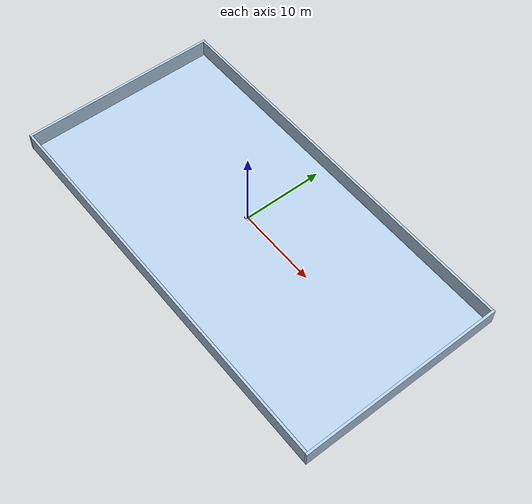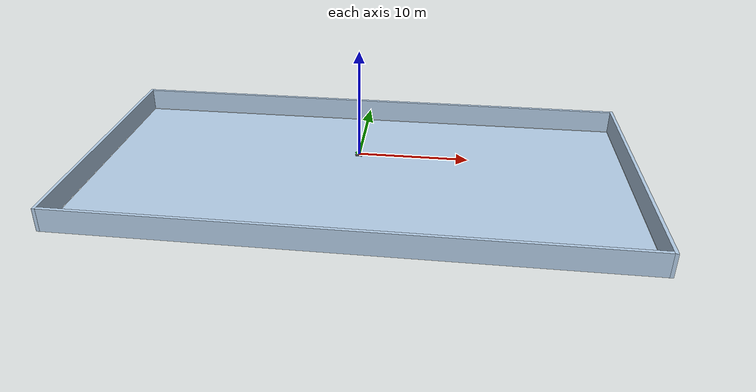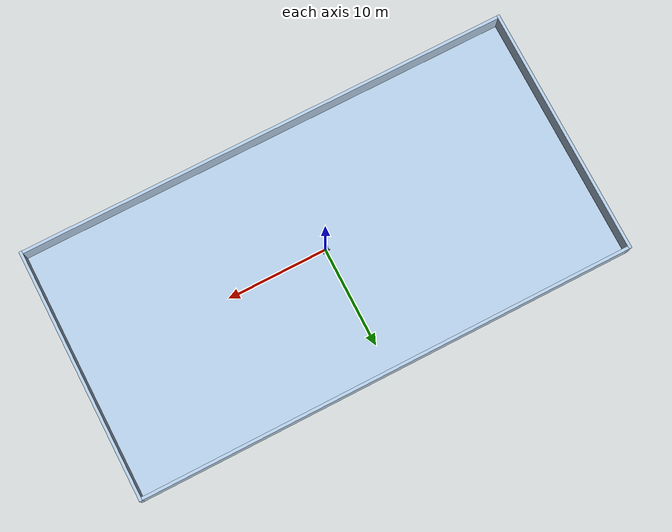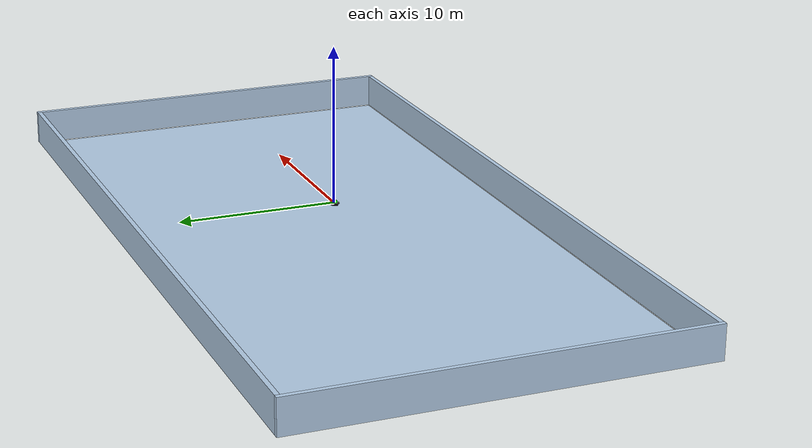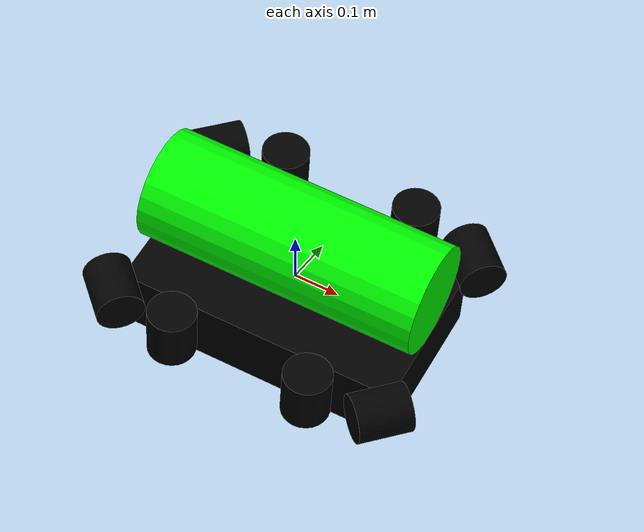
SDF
<?xml version="1.0" ?>
<sdf version="1.8">
    <world name="water_world">
        <physics name="1ms" type="ignored">
            <max_step_size>0.001</max_step_size>
            <real_time_factor>1.0</real_time_factor>
        </physics>

        <plugin
            filename="libignition-gazebo-physics-system.so"
            name="ignition::gazebo::systems::Physics">
        </plugin>
        <plugin
            filename="libignition-gazebo-user-commands-system.so"
            name="ignition::gazebo::systems::UserCommands">
        </plugin>
        <plugin
            filename="libignition-gazebo-scene-broadcaster-system.so"
            name="ignition::gazebo::systems::SceneBroadcaster">
        </plugin>

        <plugin
            filename="ignition-gazebo-sensors-system"
            name="gz::sim::systems::Sensors">
            <render_engine>ogre2</render_engine>
        </plugin>

        <plugin
            filename="ignition-gazebo-buoyancy-system"
            name="ignition::gazebo::systems::Buoyancy">
            <graded_buoyancy>
                <default_density>1000</default_density>
                <density_change>
                    <above_depth>0</above_depth>
                    <density>1</density>
                </density_change>
            </graded_buoyancy>
        </plugin>

        <light type="directional" name="sun">
            <cast_shadows>true</cast_shadows>
            <pose>0 0 10 0 0 0</pose>
            <diffuse>0.8 0.8 0.8 1</diffuse>
            <specular>0.2 0.2 0.2 1</specular>
            <attenuation>
                <range>1000</range>
                <constant>0.9</constant>
                <linear>0.01</linear>
                <quadratic>0.001</quadratic>
            </attenuation>
            <direction>-0.5 0.1 -0.9</direction>
        </light>

        <model name="pool_structure">
            <static>true</static>
            <pose>0 0 -2.2 0 0 0</pose>

            <include>
                <uri>model://pool_ground</uri>
                <pose>0 0 0 0 0 0</pose>
            </include>

            <!-- Long walls (x direction) -->
            <link name="wall_x_pos">
                <pose>25.15 0 1.1 0 0 0</pose>
                <collision name="col">
                <geometry>
                    <box>
                    <size>0.3 25.6 2.2</size>
                    </box>
                </geometry>
                </collision>
                <visual name="vis">
                <geometry>
                    <box>
                    <size>0.3 25.6 2.2</size>
                    </box>
                </geometry>
                <material>
                    <ambient>0.7 0.8 0.9 1</ambient>
                    <diffuse>0.7 0.8 0.9 1</diffuse>
                    <specular>0.3 0.3 0.3 1</specular>
                    <emissive>0 0 0 1</emissive>
                </material>
                </visual>
            </link>

            <link name="wall_x_neg">
                <pose>-25.15 0 1.1 0 0 0</pose>
                <collision name="col">
                <geometry>
                    <box>
                    <size>0.3 25.6 2.2</size>
                    </box>
                </geometry>
                </collision>
                <visual name="vis">
                <geometry>
                    <box>
                    <size>0.3 25.6 2.2</size>
                    </box>
                </geometry>
                <material>
                    <ambient>0.7 0.8 0.9 1</ambient>
                    <diffuse>0.7 0.8 0.9 1</diffuse>
                    <specular>0.3 0.3 0.3 1</specular>
                    <emissive>0 0 0 1</emissive>
                </material>
                </visual>
            </link>

            <!-- Short walls (y direction) -->
            <link name="wall_y_pos">
                <pose>0 12.65 1.1 0 0 0</pose>
                <collision name="col">
                <geometry>
                    <box>
                    <size>50 0.3 2.2</size>
                    </box>
                </geometry>
                </collision>
                <visual name="vis">
                <geometry>
                    <box>
                    <size>50 0.3 2.2</size>
                    </box>
                </geometry>
                <material>
                    <ambient>0.7 0.8 0.9 1</ambient>
                    <diffuse>0.7 0.8 0.9 1</diffuse>
                    <specular>0.3 0.3 0.3 1</specular>
                    <emissive>0 0 0 1</emissive>
                </material>
                </visual>
            </link>

            <link name="wall_y_neg">
                <pose>0 -12.65 1.1 0 0 0</pose>
                <collision name="col">
                <geometry>
                    <box>
                    <size>50 0.3 2.2</size>
                    </box>
                </geometry>
                </collision>
                <visual name="vis">
                <geometry>
                    <box>
                    <size>50 0.3 2.2</size>
                    </box>
                </geometry>
                <material>
                    <ambient>0.7 0.8 0.9 1</ambient>
                    <diffuse>0.7 0.8 0.9 1</diffuse>
                    <specular>0.3 0.3 0.3 1</specular>
                    <emissive>0 0 0 1</emissive>
                </material>
                </visual>
            </link>
        </model>

        <include>
            <pose>0 0 0 0.1 0.1 0.1</pose>
            <uri>orca_auv</uri>
        </include>

    </world>
</sdf>

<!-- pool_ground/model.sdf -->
<sdf version="1.8">
  <model name="pool_ground">
    <static>true</static>
    <link name="pool_floor">
      <collision name="collision">
        <geometry>
          <plane>
            <normal>0 0 1</normal>
            <size>50 25</size>
          </plane>
        </geometry>
        <surface>
          <contact>
            <collide_bitmask>0x01</collide_bitmask>
          </contact>
          <friction>
            <ode>
              <mu>0.8</mu>
              <mu2>0.8</mu2>
            </ode>
          </friction>
        </surface>
      </collision>

      <visual name="visual">
        <geometry>
          <plane>
            <normal>0 0 1</normal>
            <size>50 25</size>
          </plane>
        </geometry>
        <material>
          <!-- Direct texture approach -->
          <ambient>0.7 0.8 0.9 1</ambient>
          <diffuse>0.7 0.8 0.9 1</diffuse>
          <specular>0.3 0.3 0.3 1</specular>
          <emissive>0 0 0 1</emissive>
          <pbr>
            <metal>
              <albedo_map>model://pool_ground/materials/textures/pool_bottom_tiles_half_size.png</albedo_map>
            </metal>
          </pbr>
        </material>
      </visual>
    </link>
  </model>
</sdf>

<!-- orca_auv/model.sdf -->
<sdf version="1.8">
  <model name="orca_auv">

    <link name="main_body">

      <inertial>
        <mass>20</mass>
        <inertia>
          <ixx>0.2</ixx>
          <ixy>0</ixy>
          <ixz>0</ixz>
          <iyy>0.5</iyy>
          <iyz>0</iyz>
          <izz>0.5</izz>
        </inertia>
      </inertial>

      <collision name="main_body_buoyancy">

        <pose>0 0 0.115 0 0 0</pose>

        <geometry>
          <box>
            <size>0.6 0.200 0.200</size>
          </box>
        </geometry>

      </collision>

      <visual name="main_hull_visual">

        <pose>0 0 0.115 0 1.5707963268 0</pose>

        <geometry>
          <cylinder>
            <radius>0.115</radius>
            <length>0.6</length>
          </cylinder>
        </geometry>

        <material>
          <ambient>0.0 1.0 0.0 0.0</ambient>
          <diffuse>0.0 1.0 0.0 0.0</diffuse>
          <specular>0.25 0.25 0.25 1.0</specular>
        </material>

      </visual>

      <visual name="main_frame_visual">

        <pose>0 0 -0.070 0 0 0</pose>

        <geometry>
          <box>
            <size>0.6 0.340 0.140</size>
          </box>
        </geometry>

        <material>
          <ambient>0.0 0.0 0.0 0.0</ambient>
          <diffuse>0.0 0.0 0.0 0.0</diffuse>
          <specular>0.25 0.25 0.25 1.0</specular>
        </material>

      </visual>

      <!-- Bottom-side camera sensor -->
      <sensor name="bottom_camera" type="camera">
        <pose>0 0 -0.123 0 1.57 0</pose>
        <camera>
        <horizontal_fov>1.047</horizontal_fov>
        <image>
          <width>640</width>
          <height>480</height>
          <format>R8G8B8</format>
        </image>
        <clip>
          <near>0.1</near>
          <far>100</far>
        </clip>
        </camera>
        <always_on>1</always_on>
        <update_rate>30</update_rate>
        <visualize>true</visualize>
        <topic>/orca_auv/bottom_camera/image_raw</topic>
      </sensor>

      <sensor name="orca_auv_imu_sensor" type="imu">
        <always_on>true</always_on>
        <update_rate>100</update_rate>
        <visualize>true</visualize>
        <topic>/orca_auv/imu</topic>
        <pose>0 0 0 0 3.1415926536 0</pose>

        <plugin filename="libignition-gazebo-imu-system.so"
                name="ignition::gazebo::systems::Imu">
        </plugin>
      </sensor>

      <sensor name="orca_auv_altimeter" type="altimeter">
        <always_on>true</always_on>
        <update_rate>100</update_rate>
        <visualize>true</visualize>
        <topic>/orca_auv/altimeter</topic>
        <pose>0 0.115 0 0 0 1.5707963268</pose>

        <plugin filename="libignition-gazebo-altimeter-system.so"
          name="ignition::gazebo::systems::Altimeter" />

        <altimeter>
          <vertical_position>
            <noise type="gaussian"></noise>
          </vertical_position>
        </altimeter>
      </sensor>

    </link>

    <plugin
      filename="ignition-gazebo-hydrodynamics-system"
      name="ignition::gazebo::systems::Hydrodynamics">
      <link_name>main_body</link_name>

      <xDotU>-1</xDotU>
      <yDotV>-1</yDotV>
      <zDotW>-1</zDotW>

      <kDotP>-0.1</kDotP>
      <mDotQ>-0.1</mDotQ>
      <nDotR>-0.1</nDotR>

      <xUabsU>-1</xUabsU>
      <yVabsV>-1</yVabsV>
      <zWabsW>-1</zWabsW>

      <kPabsP>-1</kPabsP>
      <mQabsQ>-1</mQabsQ>
      <nRabsR>-1</nRabsR>

      <xU>-30</xU>
      <yV>-30</yV>
      <zW>-30</zW>

      <kP>-1</kP>
      <mQ>-1</mQ>
      <nR>-1</nR>
    </plugin>

    <!-- thruster_0 begin -->

    <link name="thruster_0">

      <pose relative_to="main_body">0.150 0.237 0 0 1.5707963268 0</pose>

      <inertial>
        <mass>0.427</mass>
        <inertia>
          <ixx>0.0006</ixx>
          <ixy>0</ixy>
          <ixz>0</ixz>
          <iyy>0.0003</iyy>
          <iyz>0</iyz>
          <izz>0.0003</izz>
        </inertia>
      </inertial>

      <visual name="thruster_0_visual">
        <pose>0 0 0 0 1.5707963268 0</pose>

        <geometry>
          <cylinder>
            <radius>0.050</radius>
            <length>0.113</length>
          </cylinder>
        </geometry>

        <material>
          <ambient>0.0 0.0 0.0 0.0</ambient>
          <diffuse>0.0 0.0 0.0 0.0</diffuse>
          <specular>0.25 0.25 0.25 1.0</specular>
        </material>
      </visual>

    </link>

    <joint name="thruster_0_joint" type="revolute">
      <parent>main_body</parent>
      <child>thruster_0</child>

      <axis>
        <xyz>1 0 0</xyz>
      </axis>
    </joint>

    <plugin
      filename="ignition-gazebo-thruster-system"
      name="ignition::gazebo::systems::Thruster">
      <namespace>orca_auv</namespace>
      <topic>thruster_0/set_output_force_N</topic>

      <joint_name>thruster_0_joint</joint_name>

      <fluid_density>1000</fluid_density>
      <propeller_diameter>0.076</propeller_diameter>
      <thrust_coefficient>1.0</thrust_coefficient>
    </plugin>

    <!-- thruster_0 end -->

    <!-- thruster_1 begin -->

    <link name="thruster_1">

      <pose relative_to="main_body">0.150 -0.237 0 0 1.5707963268 0</pose>

      <inertial>
        <mass>0.427</mass>
        <inertia>
          <ixx>0.0006</ixx>
          <ixy>0</ixy>
          <ixz>0</ixz>
          <iyy>0.0003</iyy>
          <iyz>0</iyz>
          <izz>0.0003</izz>
        </inertia>
      </inertial>

      <visual name="thruster_1_visual">
        <pose>0 0 0 0 1.5707963268 0</pose>

        <geometry>
          <cylinder>
            <radius>0.050</radius>
            <length>0.113</length>
          </cylinder>
        </geometry>

        <material>
          <ambient>0.0 0.0 0.0 0.0</ambient>
          <diffuse>0.0 0.0 0.0 0.0</diffuse>
          <specular>0.25 0.25 0.25 1.0</specular>
        </material>
      </visual>

    </link>

    <joint name="thruster_1_joint" type="revolute">
      <parent>main_body</parent>
      <child>thruster_1</child>

      <axis>
        <xyz>1 0 0</xyz>
      </axis>
    </joint>

    <plugin
      filename="ignition-gazebo-thruster-system"
      name="ignition::gazebo::systems::Thruster">
      <namespace>orca_auv</namespace>
      <topic>thruster_1/set_output_force_N</topic>

      <joint_name>thruster_1_joint</joint_name>

      <fluid_density>1000</fluid_density>
      <propeller_diameter>0.076</propeller_diameter>
      <thrust_coefficient>1.0</thrust_coefficient>
    </plugin>

    <!-- thruster_1 end -->

    <!-- thruster_2 begin -->

    <link name="thruster_2">

      <pose relative_to="main_body">-0.150 0.237 0 0 1.5707963268 0</pose>

      <inertial>
        <mass>0.427</mass>
        <inertia>
          <ixx>0.0006</ixx>
          <ixy>0</ixy>
          <ixz>0</ixz>
          <iyy>0.0003</iyy>
          <iyz>0</iyz>
          <izz>0.0003</izz>
        </inertia>
      </inertial>

      <visual name="thruster_2_visual">
        <pose>0 0 0 0 1.5707963268 0</pose>

        <geometry>
          <cylinder>
            <radius>0.050</radius>
            <length>0.113</length>
          </cylinder>
        </geometry>

        <material>
          <ambient>0.0 0.0 0.0 0.0</ambient>
          <diffuse>0.0 0.0 0.0 0.0</diffuse>
          <specular>0.25 0.25 0.25 1.0</specular>
        </material>
      </visual>

    </link>

    <joint name="thruster_2_joint" type="revolute">
      <parent>main_body</parent>
      <child>thruster_2</child>

      <axis>
        <xyz>1 0 0</xyz>
      </axis>
    </joint>

    <plugin
      filename="ignition-gazebo-thruster-system"
      name="ignition::gazebo::systems::Thruster">
      <namespace>orca_auv</namespace>
      <topic>thruster_2/set_output_force_N</topic>

      <joint_name>thruster_2_joint</joint_name>

      <fluid_density>1000</fluid_density>
      <propeller_diameter>0.076</propeller_diameter>
      <thrust_coefficient>1.0</thrust_coefficient>
    </plugin>

    <!-- thruster_2 end -->

    <!-- thruster_3 begin -->

    <link name="thruster_3">

      <pose relative_to="main_body">-0.150 -0.237 0 0 1.5707963268 0</pose>

      <inertial>
        <mass>0.427</mass>
        <inertia>
          <ixx>0.0006</ixx>
          <ixy>0</ixy>
          <ixz>0</ixz>
          <iyy>0.0003</iyy>
          <iyz>0</iyz>
          <izz>0.0003</izz>
        </inertia>
      </inertial>

      <visual name="thruster_3_visual">
        <pose>0 0 0 0 1.5707963268 0</pose>

        <geometry>
          <cylinder>
            <radius>0.050</radius>
            <length>0.113</length>
          </cylinder>
        </geometry>

        <material>
          <ambient>0.0 0.0 0.0 0.0</ambient>
          <diffuse>0.0 0.0 0.0 0.0</diffuse>
          <specular>0.25 0.25 0.25 1.0</specular>
        </material>
      </visual>

    </link>

    <joint name="thruster_3_joint" type="revolute">
      <parent>main_body</parent>
      <child>thruster_3</child>

      <axis>
        <xyz>1 0 0</xyz>
      </axis>
    </joint>

    <plugin
      filename="ignition-gazebo-thruster-system"
      name="ignition::gazebo::systems::Thruster">
      <namespace>orca_auv</namespace>
      <topic>thruster_3/set_output_force_N</topic>

      <joint_name>thruster_3_joint</joint_name>

      <fluid_density>1000</fluid_density>
      <propeller_diameter>0.076</propeller_diameter>
      <thrust_coefficient>1.0</thrust_coefficient>
    </plugin>

    <!-- thruster_3 end -->

    <!-- thruster_4 begin -->

    <link name="thruster_4">

      <pose relative_to="main_body">0.29651 0.213 0 0 0 -0.7853981634</pose>

      <inertial>
        <mass>0.427</mass>
        <inertia>
          <ixx>0.0006</ixx>
          <ixy>0</ixy>
          <ixz>0</ixz>
          <iyy>0.0003</iyy>
          <iyz>0</iyz>
          <izz>0.0003</izz>
        </inertia>
      </inertial>

      <visual name="thruster_4_visual">
        <pose>0 0 0 0 1.5707963268 0</pose>

        <geometry>
          <cylinder>
            <radius>0.050</radius>
            <length>0.113</length>
          </cylinder>
        </geometry>

        <material>
          <ambient>0.0 0.0 0.0 0.0</ambient>
          <diffuse>0.0 0.0 0.0 0.0</diffuse>
          <specular>0.25 0.25 0.25 1.0</specular>
        </material>
      </visual>

    </link>

    <joint name="thruster_4_joint" type="revolute">
      <parent>main_body</parent>
      <child>thruster_4</child>

      <axis>
        <xyz>1 0 0</xyz>
      </axis>
    </joint>

    <plugin
      filename="ignition-gazebo-thruster-system"
      name="ignition::gazebo::systems::Thruster">
      <namespace>orca_auv</namespace>
      <topic>thruster_4/set_output_force_N</topic>

      <joint_name>thruster_4_joint</joint_name>

      <fluid_density>1000</fluid_density>
      <propeller_diameter>0.076</propeller_diameter>
      <thrust_coefficient>1.0</thrust_coefficient>
    </plugin>

    <!-- thruster_4 end -->

    <!-- thruster_5 begin -->

    <link name="thruster_5">

      <pose relative_to="main_body">0.29651 -0.213 0 0 0 0.7853981634</pose>

      <inertial>
        <mass>0.427</mass>
        <inertia>
          <ixx>0.0006</ixx>
          <ixy>0</ixy>
          <ixz>0</ixz>
          <iyy>0.0003</iyy>
          <iyz>0</iyz>
          <izz>0.0003</izz>
        </inertia>
      </inertial>

      <visual name="thruster_5_visual">
        <pose>0 0 0 0 1.5707963268 0</pose>

        <geometry>
          <cylinder>
            <radius>0.050</radius>
            <length>0.113</length>
          </cylinder>
        </geometry>

        <material>
          <ambient>0.0 0.0 0.0 0.0</ambient>
          <diffuse>0.0 0.0 0.0 0.0</diffuse>
          <specular>0.25 0.25 0.25 1.0</specular>
        </material>
      </visual>

    </link>

    <joint name="thruster_5_joint" type="revolute">
      <parent>main_body</parent>
      <child>thruster_5</child>

      <axis>
        <xyz>1 0 0</xyz>
      </axis>
    </joint>

    <plugin
      filename="ignition-gazebo-thruster-system"
      name="ignition::gazebo::systems::Thruster">
      <namespace>orca_auv</namespace>
      <topic>thruster_5/set_output_force_N</topic>

      <joint_name>thruster_5_joint</joint_name>

      <fluid_density>1000</fluid_density>
      <propeller_diameter>0.076</propeller_diameter>
      <thrust_coefficient>1.0</thrust_coefficient>
    </plugin>

    <!-- thruster_5 end -->

    <!-- thruster_6 begin -->

    <link name="thruster_6">

      <pose relative_to="main_body">-0.29651 0.213 0 0 0 0.7853981634</pose>

      <inertial>
        <mass>0.427</mass>
        <inertia>
          <ixx>0.0006</ixx>
          <ixy>0</ixy>
          <ixz>0</ixz>
          <iyy>0.0003</iyy>
          <iyz>0</iyz>
          <izz>0.0003</izz>
        </inertia>
      </inertial>

      <visual name="thruster_6_visual">
        <pose>0 0 0 0 1.5707963268 0</pose>

        <geometry>
          <cylinder>
            <radius>0.050</radius>
            <length>0.113</length>
          </cylinder>
        </geometry>

        <material>
          <ambient>0.0 0.0 0.0 0.0</ambient>
          <diffuse>0.0 0.0 0.0 0.0</diffuse>
          <specular>0.25 0.25 0.25 1.0</specular>
        </material>
      </visual>

    </link>

    <joint name="thruster_6_joint" type="revolute">
      <parent>main_body</parent>
      <child>thruster_6</child>

      <axis>
        <xyz>1 0 0</xyz>
      </axis>
    </joint>

    <plugin
      filename="ignition-gazebo-thruster-system"
      name="ignition::gazebo::systems::Thruster">
      <namespace>orca_auv</namespace>
      <topic>thruster_6/set_output_force_N</topic>

      <joint_name>thruster_6_joint</joint_name>

      <fluid_density>1000</fluid_density>
      <propeller_diameter>0.076</propeller_diameter>
      <thrust_coefficient>1.0</thrust_coefficient>
    </plugin>

    <!-- thruster_6 end -->

    <!-- thruster_7 begin -->

    <link name="thruster_7">

      <pose relative_to="main_body">-0.29651 -0.213 0 0 0 -0.7853981634</pose>

      <inertial>
        <mass>0.427</mass>
        <inertia>
          <ixx>0.0006</ixx>
          <ixy>0</ixy>
          <ixz>0</ixz>
          <iyy>0.0003</iyy>
          <iyz>0</iyz>
          <izz>0.0003</izz>
        </inertia>
      </inertial>

      <visual name="thruster_7_visual">
        <pose>0 0 0 0 1.5707963268 0</pose>

        <geometry>
          <cylinder>
            <radius>0.050</radius>
            <length>0.113</length>
          </cylinder>
        </geometry>

        <material>
          <ambient>0.0 0.0 0.0 0.0</ambient>
          <diffuse>0.0 0.0 0.0 0.0</diffuse>
          <specular>0.25 0.25 0.25 1.0</specular>
        </material>
      </visual>

    </link>

    <joint name="thruster_7_joint" type="revolute">
      <parent>main_body</parent>
      <child>thruster_7</child>

      <axis>
        <xyz>1 0 0</xyz>
      </axis>
    </joint>

    <plugin
      filename="ignition-gazebo-thruster-system"
      name="ignition::gazebo::systems::Thruster">
      <namespace>orca_auv</namespace>
      <topic>thruster_7/set_output_force_N</topic>

      <joint_name>thruster_7_joint</joint_name>

      <fluid_density>1000</fluid_density>
      <propeller_diameter>0.076</propeller_diameter>
      <thrust_coefficient>1.0</thrust_coefficient>
    </plugin>

    <!-- thruster_7 end -->

  </model>
</sdf>
